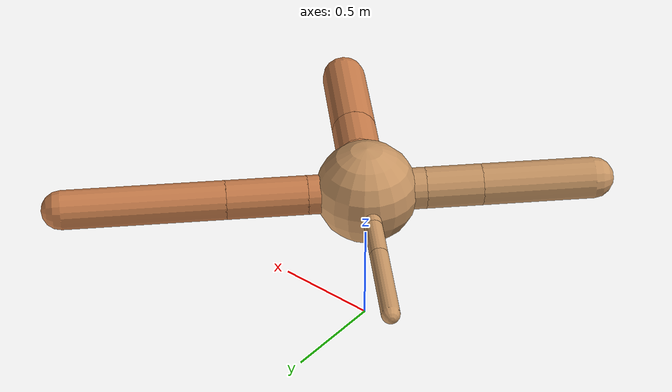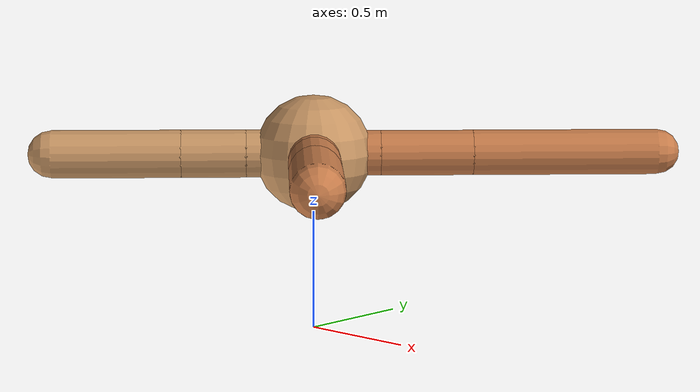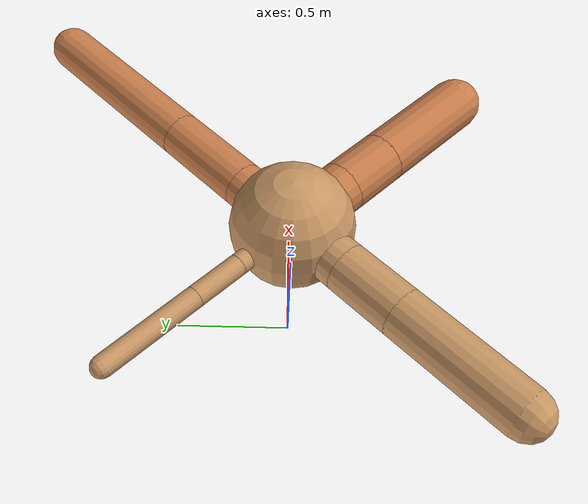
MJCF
<?xml version="1.0" ?>
<mujoco model="ant">

	<compiler angle="degree" coordinate="local" inertiafromgeom="true"/>

	<option integrator="RK4" timestep="0.01"/>

	<custom>

		<numeric data="0.0 0.0 0.55 1.0 0.0 0.0 0.0 0.0 1.0 0.0 -1.0 0.0 -1.0 0.0 1.0" name="init_qpos"/>

	</custom>

	<default>

		<joint armature="1" damping="1" limited="true"/>

		<geom conaffinity="0" condim="3" density="5.0" friction="1.5 0.1 0.1" margin="0.01" rgba="0.8 0.6 0.4 1"/>

	</default>

	<worldbody>

		<body name="torso" pos="0 0 0.75">

			<geom name="torso_geom" pos="0 0 0" size="0.24759748221395228" type="sphere"/>

			<!--joint armature="0" damping="0" limited="false" margin="0.01" name="root" pos="0 0 0" type="free"/-->

			<body name="front_left_leg" pos="0 0 0">

				<geom fromto="0 0 0 0.2 0.2 0" name="aux_1_geom" size="0.09492630492555414" type="capsule" rgba=".8 .5 .3 1"/>

				<body name="aux_1" pos="0.2 0.2 0">

					<joint axis="0 0 1" name="hip_1" pos="0.0 0.0 0.0" range="-40 40" type="hinge"/>

					<geom fromto="0 0 0 0.27551649542877404 0.27551649542877404 0" name="left_leg_geom" size="0.09492630492555414" type="capsule" rgba=".8 .5 .3 1"/>

					<body pos="0.27551649542877404 0.27551649542877404 0" name="front_left_foot">

						<joint axis="-1 1 0" name="ankle_1" pos="0.0 0.0 0.0" range="30 100" type="hinge"/>

						<geom fromto="0 0 0 0.5510329908575481 0.5510329908575481 0" name="left_ankle_geom" size="0.09492630492555414" type="capsule" rgba=".8 .5 .3 1"/>

					</body>

				</body>

			</body>

			<body name="front_right_leg" pos="0 0 0">

				<geom fromto="0 0 0 -0.2 0.2 0" name="aux_2_geom" size="0.04323908775204262" type="capsule"/>

				<body name="aux_2" pos="-0.2 0.2 0">

					<joint axis="0 0 1" name="hip_2" pos="0.0 0.0 0.0" range="-40 40" type="hinge"/>

					<geom fromto="0 0 0 -0.14913769148445394 0.14913769148445394 0" name="right_leg_geom" size="0.04323908775204262" type="capsule"/>

					<body pos="-0.14913769148445394 0.14913769148445394 0" name="front_right_foot">

						<joint axis="1 1 0" name="ankle_2" pos="0.0 0.0 0.0" range="-100 -30" type="hinge"/>

						<geom fromto="0 0 0 -0.2982753829689079 0.2982753829689079 0" name="right_ankle_geom" size="0.04323908775204262" type="capsule"/>

					</body>

				</body>

			</body>

			<body name="left_back_leg" pos="0 0 0">

				<geom fromto="0 0 0 -0.2 -0.2 0" name="aux_3_geom" size="0.10080073776654136" type="capsule"/>

				<body name="aux_3" pos="-0.2 -0.2 0">

					<joint axis="0 0 1" name="hip_3" pos="0.0 0.0 0.0" range="-40 40" type="hinge"/>

					<geom fromto="0 0 0 -0.1927989884437241 -0.1927989884437241 0" name="back_leg_geom" size="0.10080073776654136" type="capsule"/>

					<body pos="-0.1927989884437241 -0.1927989884437241 0" name="left_back_foot">

						<joint axis="-1 1 0" name="ankle_3" pos="0.0 0.0 0.0" range="-100 -30" type="hinge"/>

						<geom fromto="0 0 0 -0.3855979768874482 -0.3855979768874482 0" name="third_ankle_geom" size="0.10080073776654136" type="capsule"/>

					</body>

				</body>

			</body>

			<body name="right_back_leg" pos="0 0 0">

				<geom fromto="0 0 0 0.2 -0.2 0" name="aux_4_geom" size="0.10977696374827481" type="capsule" rgba=".8 .5 .3 1"/>

				<body name="aux_4" pos="0.2 -0.2 0">

					<joint axis="0 0 1" name="hip_4" pos="0.0 0.0 0.0" range="-40 40" type="hinge"/>

					<geom fromto="0 0 0 0.16737377917923213 -0.16737377917923213 0" name="rightback_leg_geom" size="0.10977696374827481" type="capsule" rgba=".8 .5 .3 1"/>

					<body pos="0.16737377917923213 -0.16737377917923213 0" name="right_back_foot">

						<joint axis="1 1 0" name="ankle_4" pos="0.0 0.0 0.0" range="30 100" type="hinge"/>

						<geom fromto="0 0 0 0.33474755835846426 -0.33474755835846426 0" name="fourth_ankle_geom" size="0.10977696374827481" type="capsule" rgba=".8 .5 .3 1"/>

					</body>

				</body>

			</body>

		</body>

	</worldbody>

	<actuator>

		<motor ctrllimited="true" ctrlrange="-1.0 1.0" joint="hip_4" gear="150"/>

		<motor ctrllimited="true" ctrlrange="-1.0 1.0" joint="ankle_4" gear="150"/>

		<motor ctrllimited="true" ctrlrange="-1.0 1.0" joint="hip_1" gear="150"/>

		<motor ctrllimited="true" ctrlrange="-1.0 1.0" joint="ankle_1" gear="150"/>

		<motor ctrllimited="true" ctrlrange="-1.0 1.0" joint="hip_2" gear="150"/>

		<motor ctrllimited="true" ctrlrange="-1.0 1.0" joint="ankle_2" gear="150"/>

		<motor ctrllimited="true" ctrlrange="-1.0 1.0" joint="hip_3" gear="150"/>

		<motor ctrllimited="true" ctrlrange="-1.0 1.0" joint="ankle_3" gear="150"/>

	</actuator>

</mujoco>
